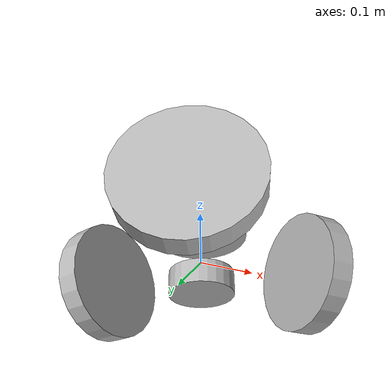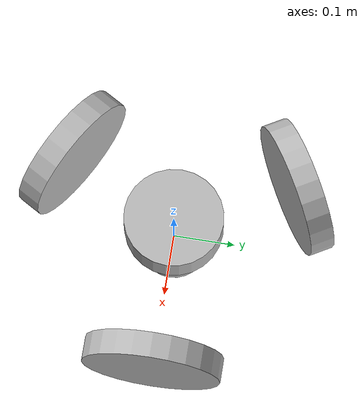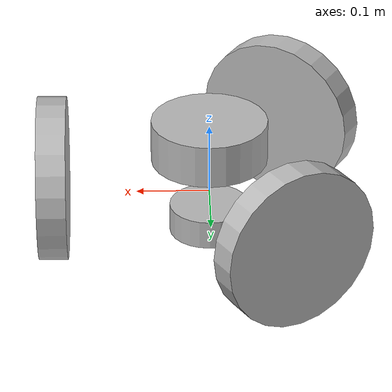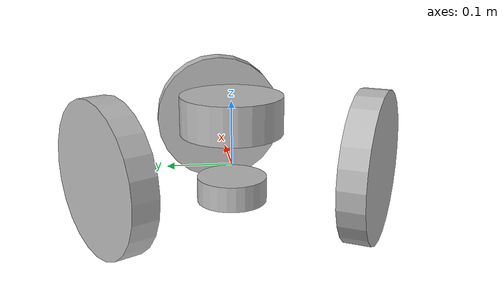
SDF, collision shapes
<sdf version='1.7'>
  <model name='hades'>
    <link name='base_link'>
      <inertial>
        <pose>0 0 0.048063 0 -0 0</pose>
        <mass>5.11</mass>
        <inertia>
          <ixx>0.0509718</ixx>
          <ixy>0</ixy>
          <ixz>0</ixz>
          <iyy>0.0509718</iyy>
          <iyz>0</iyz>
          <izz>0.0801</izz>
        </inertia>
      </inertial>
      <collision name='base_link_collision'>
        <pose>0 0 0.08 0 -0 0</pose>
        <geometry>
          <cylinder>
            <length>0.06</length>
            <radius>0.08</radius>
          </cylinder>
        </geometry>
      </collision>
      <collision name='base_link_fixed_joint_lump__laser_link_collision_1'>
        <pose>0 0 -0.04 0 -0 0</pose>
        <geometry>
          <cylinder>
            <length>0.04</length>
            <radius>0.055</radius>
          </cylinder>
        </geometry>
        <surface>
          <contact>
            <ode/>
          </contact>
          <friction>
            <ode/>
          </friction>
        </surface>
      </collision>
      <visual name='base_link_visual'>
        <pose>0 0 0 1.5708 -0 1.5708</pose>
        <geometry>
          <mesh>
            <scale>0.001 0.001 0.001</scale>
            <uri>model://hades_description/meshes/base/base.dae</uri>
          </mesh>
        </geometry>
      </visual>
      <visual name='base_link_fixed_joint_lump__laser_link_visual_1'>
        <pose>0 0 -0.04 0 -0 0</pose>
        <geometry>
          <cylinder>
            <length>0.04</length>
            <radius>0.055</radius>
          </cylinder>
        </geometry>
      </visual>
      <sensor name='rplidar_c1' type='ray'>
        <always_on>1</always_on>
        <visualize>1</visualize>
        <update_rate>10</update_rate>
        <ray>
          <scan>
            <horizontal>
              <samples>360</samples>
              <resolution>1</resolution>
              <min_angle>-3.14159</min_angle>
              <max_angle>3.14159</max_angle>
            </horizontal>
          </scan>
          <range>
            <min>0.28</min>
            <max>12</max>
            <resolution>0.01</resolution>
          </range>
          <noise>
            <type>gaussian</type>
            <mean>0</mean>
            <stddev>0.01</stddev>
          </noise>
        </ray>
        <plugin name='gazebo_ros_laser_controller' filename='libgazebo_ros_ray_sensor.so'>
          <ros>
            <remapping>~/out:=/scan</remapping>
          </ros>
          <output_type>sensor_msgs/LaserScan</output_type>
          <frame_name>laser_link</frame_name>
        </plugin>
        <pose>0 0 -0.04 0 -0 0</pose>
      </sensor>
    </link>
    <joint name='back_left_wheel_joint' type='revolute'>
      <pose relative_to='base_link'>-0.1075 0.186195 0.022886 0 -0 2.0944</pose>
      <parent>base_link</parent>
      <child>back_left_wheel_link</child>
      <axis>
        <xyz>-1 0 0</xyz>
        <limit>
          <lower>-1e+16</lower>
          <upper>1e+16</upper>
        </limit>
        <dynamics>
          <damping>0.01</damping>
          <friction>0.05</friction>
          <spring_reference>0</spring_reference>
          <spring_stiffness>0</spring_stiffness>
        </dynamics>
      </axis>
    </joint>
    <link name='back_left_wheel_link'>
      <pose relative_to='back_left_wheel_joint'>0 0 0 0 -0 0</pose>
      <inertial>
        <pose>0 0 0 3.14159 1.57079 3.14159</pose>
        <mass>0.8</mass>
        <inertia>
          <ixx>0.00259</ixx>
          <ixy>0</ixy>
          <ixz>0</ixz>
          <iyy>0.00506</iyy>
          <iyz>0</iyz>
          <izz>0.00259</izz>
        </inertia>
      </inertial>
      <collision name='back_left_wheel_link_collision'>
        <pose>0 0 0 0 1.5708 0</pose>
        <geometry>
          <cylinder>
            <length>0.04</length>
            <radius>0.1125</radius>
          </cylinder>
        </geometry>
        <surface>
          <contact>
            <ode>
              <kp>1e+07</kp>
              <kd>1</kd>
              <max_vel>0.1</max_vel>
              <min_depth>0.002</min_depth>
            </ode>
          </contact>
          <friction>
            <ode>
              <mu>1.5</mu>
              <mu2>0.01</mu2>
              <fdir1>0 1 0</fdir1>
            </ode>
          </friction>
        </surface>
      </collision>
      <visual name='back_left_wheel_link_visual'>
        <pose>0 0 0 1.5708 -0 0</pose>
        <geometry>
          <mesh>
            <scale>0.001 0.001 0.001</scale>
            <uri>model://hades_description/meshes/wheels/wheel.dae</uri>
          </mesh>
        </geometry>
      </visual>
    </link>
    <joint name='back_right_wheel_joint' type='revolute'>
      <pose relative_to='base_link'>-0.1075 -0.186195 0.022886 0 0 -2.0944</pose>
      <parent>base_link</parent>
      <child>back_right_wheel_link</child>
      <axis>
        <xyz>-1 0 0</xyz>
        <limit>
          <lower>-1e+16</lower>
          <upper>1e+16</upper>
        </limit>
        <dynamics>
          <damping>0.01</damping>
          <friction>0.05</friction>
          <spring_reference>0</spring_reference>
          <spring_stiffness>0</spring_stiffness>
        </dynamics>
      </axis>
    </joint>
    <link name='back_right_wheel_link'>
      <pose relative_to='back_right_wheel_joint'>0 0 0 0 -0 0</pose>
      <inertial>
        <pose>0 0 0 3.14159 1.57079 3.14159</pose>
        <mass>0.8</mass>
        <inertia>
          <ixx>0.00259</ixx>
          <ixy>0</ixy>
          <ixz>0</ixz>
          <iyy>0.00506</iyy>
          <iyz>0</iyz>
          <izz>0.00259</izz>
        </inertia>
      </inertial>
      <collision name='back_right_wheel_link_collision'>
        <pose>0 0 0 0 1.5708 0</pose>
        <geometry>
          <cylinder>
            <length>0.04</length>
            <radius>0.1125</radius>
          </cylinder>
        </geometry>
        <surface>
          <contact>
            <ode>
              <kp>1e+07</kp>
              <kd>1</kd>
              <max_vel>0.1</max_vel>
              <min_depth>0.002</min_depth>
            </ode>
          </contact>
          <friction>
            <ode>
              <mu>1.5</mu>
              <mu2>0.01</mu2>
              <fdir1>0 1 0</fdir1>
            </ode>
          </friction>
        </surface>
      </collision>
      <visual name='back_right_wheel_link_visual'>
        <pose>0 0 0 1.5708 -0 0</pose>
        <geometry>
          <mesh>
            <scale>0.001 0.001 0.001</scale>
            <uri>model://hades_description/meshes/wheels/wheel.dae</uri>
          </mesh>
        </geometry>
      </visual>
    </link>
    <joint name='front_wheel_joint' type='revolute'>
      <pose relative_to='base_link'>0.215 0 0.022886 0 -0 0</pose>
      <parent>base_link</parent>
      <child>front_wheel_link</child>
      <axis>
        <xyz>-1 0 0</xyz>
        <limit>
          <lower>-1e+16</lower>
          <upper>1e+16</upper>
        </limit>
        <dynamics>
          <damping>0.01</damping>
          <friction>0.05</friction>
          <spring_reference>0</spring_reference>
          <spring_stiffness>0</spring_stiffness>
        </dynamics>
      </axis>
    </joint>
    <link name='front_wheel_link'>
      <pose relative_to='front_wheel_joint'>0 0 0 0 -0 0</pose>
      <inertial>
        <pose>0 0 0 3.14159 1.57079 3.14159</pose>
        <mass>0.8</mass>
        <inertia>
          <ixx>0.00259</ixx>
          <ixy>0</ixy>
          <ixz>0</ixz>
          <iyy>0.00506</iyy>
          <iyz>0</iyz>
          <izz>0.00259</izz>
        </inertia>
      </inertial>
      <collision name='front_wheel_link_collision'>
        <pose>0 0 0 0 1.5708 0</pose>
        <geometry>
          <cylinder>
            <length>0.04</length>
            <radius>0.1125</radius>
          </cylinder>
        </geometry>
        <surface>
          <contact>
            <ode>
              <kp>1e+07</kp>
              <kd>1</kd>
              <max_vel>0.1</max_vel>
              <min_depth>0.002</min_depth>
            </ode>
          </contact>
          <friction>
            <ode>
              <mu>1.5</mu>
              <mu2>0.01</mu2>
              <fdir1>0 1 0</fdir1>
            </ode>
          </friction>
        </surface>
      </collision>
      <visual name='front_wheel_link_visual'>
        <pose>0 0 0 1.5708 -0 0</pose>
        <geometry>
          <mesh>
            <scale>0.001 0.001 0.001</scale>
            <uri>model://hades_description/meshes/wheels/wheel.dae</uri>
          </mesh>
        </geometry>
      </visual>
    </link>
    <static>0</static>
    <plugin name='gazebo_ros2_control' filename='libgazebo_ros2_control.so'>
      <robot_param>robot_description</robot_param>
      <robot_param_node>robot_state_publisher</robot_param_node>
      <parameters>/home/rafael/hades_ws/install/hades_control/share/hades_control/config/controllers.yaml</parameters>
    </plugin>
  </model>
</sdf>
